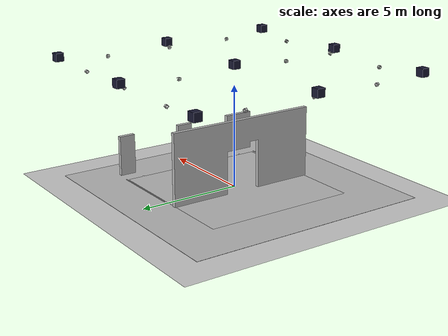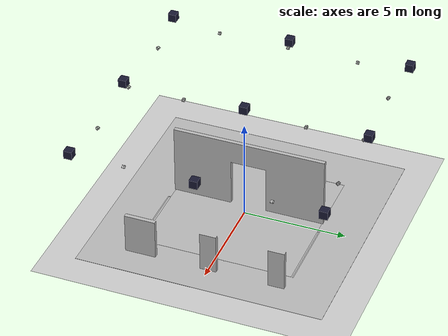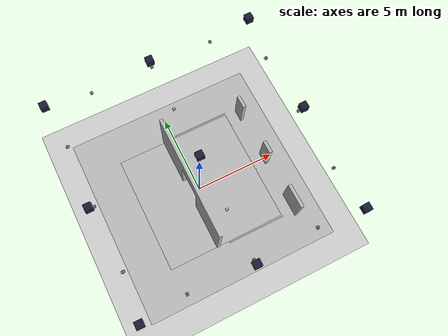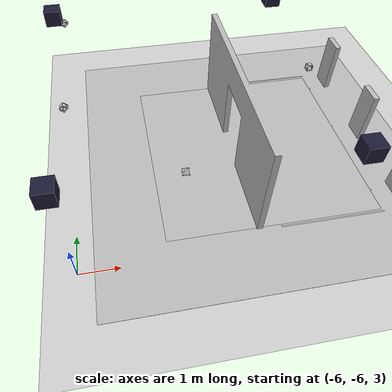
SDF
<sdf version="1.5">
 <world name="map">
  <include><uri>model://sun</uri></include>
  <include><uri>model://ground_plane</uri></include>
  <model name="truss_groundplane">
   <pose>0 0 0.01 0 0 0</pose>
   <include><uri>model://truss_groundplane</uri></include>
  </model>
  <model name="wall_with_markers">
   <pose>-0 0 0 0 0 3.14159</pose>
   <include><uri>model://wall_with_markers_big_board_onepattern_missing_markers_wear</uri></include>
  </model>
  <model name="corner0"><pose>6 6 6 0 0 0</pose><include><uri>model://truss_corner</uri></include></model>
  <model name="top_corner01"><pose>6 0 6 0 0 0</pose><include><uri>model://truss_corner</uri></include></model>
  <model name="corner1"><pose>6 -6 6 0 0 0</pose><include><uri>model://truss_corner</uri></include></model>
  <model name="top_corner12"><pose>0 -6 6 0 0 0</pose><include><uri>model://truss_corner</uri></include></model>
  <model name="corner2"><pose>-6 -6 6 0 0 0</pose><include><uri>model://truss_corner</uri></include></model>
  <model name="top_corner23"><pose>-6 0 6 0 0 0</pose><include><uri>model://truss_corner</uri></include></model>
  <model name="corner3"><pose>-6 6 6 0 0 0</pose><include><uri>model://truss_corner</uri></include></model>
  <model name="top_corner30"><pose>0 6 6 0 0 0</pose><include><uri>model://truss_corner</uri></include></model>
  <model name="center"><pose>0 0 6 0 0 0</pose><include><uri>model://truss_corner</uri></include></model>
  <model name="prime01">
   <pose>5.8 0 5.8 0 0.785 3.14</pose>
   <include><uri>model://optitrack_prime</uri></include>
  </model>
  <model name="prime02">
   <pose>5.8 -3.5 5.8 0 0.785 3.14</pose>
   <include><uri>model://optitrack_prime</uri></include>
  </model>
  <model name="prime03">
   <pose>3.5 -5.8 5.8 0 0.785 1.57</pose>
   <include><uri>model://optitrack_prime</uri></include>
  </model>
  <model name="prime04">
   <pose>0 -5.8 5.8 0 0.785 1.57</pose>
   <include><uri>model://optitrack_prime</uri></include>
  </model>
  <model name="prime05">
   <pose>-3.5 -5.8 5.8 0 0.785 1.57</pose>
   <include><uri>model://optitrack_prime</uri></include>
  </model>
  <model name="prime06">
   <pose>-5.8 -3.5 5.8 0 0.785 0</pose>
   <include><uri>model://optitrack_prime</uri></include>
  </model>
  <model name="prime07">
   <pose>-5.8 0 5.8 0 0.785 0</pose>
   <include><uri>model://optitrack_prime</uri></include>
  </model>
  <model name="prime08">
   <pose>-5.8 3.5 5.8 0 0.785 0</pose>
   <include><uri>model://optitrack_prime</uri></include>
  </model>
  <model name="prime09">
   <pose>-3.5 5.8 5.8 0 0.785 -1.57</pose>
   <include><uri>model://optitrack_prime</uri></include>
  </model>
  <model name="prime10">
   <pose>0 5.8 5.8 0 0.785 -1.57</pose>
   <include><uri>model://optitrack_prime</uri></include>
  </model>
  <model name="prime11">
   <pose>3.5 5.8 5.8 0 0.785 -1.57</pose>
   <include><uri>model://optitrack_prime</uri></include>
  </model>
  <model name="prime12">
   <pose>5.8 3.5 5.8 0 0.785 3.14</pose>
   <include><uri>model://optitrack_prime</uri></include>
  </model>
  <model name="prime13">
   <pose>0 3 5.8 0 1.57 0</pose>
   <include><uri>model://optitrack_prime</uri></include>
  </model>
  <model name="prime14">
   <pose>0 -3 5.8 0 1.57 0</pose>
   <include><uri>model://optitrack_prime</uri></include>
  </model>
  <scene><ambient>0.0 0.0 0.0 1.0</ambient><shadows>0</shadows></scene>
  <light type="directional" name="some_light">
   <diffuse>0.7 0.7 0.7 0</diffuse>
   <specular>1 1 1 0</specular>
   <direction>-1 -1 -1</direction>
   <pose>-18 0 0 0 0 3.16</pose>
  </light>
  <physics name="default_physics" default="0" type="ode">
   <gravity>0 0 -9.8066</gravity>
   <ode>
    <solver>
     <type>quick</type>
     <iters>10</iters>
     <sor>1.3</sor>
     <use_dynamic_moi_rescaling>0</use_dynamic_moi_rescaling>
    </solver>
    <constraints>
     <cfm>0</cfm>
     <erp>0.2</erp>
     <contact_max_correcting_vel>100</contact_max_correcting_vel>
     <contact_surface_layer>0.001</contact_surface_layer>
    </constraints>
   </ode>
   <max_step_size>0.004</max_step_size>
   <real_time_factor>1</real_time_factor>
   <real_time_update_rate>250</real_time_update_rate>
   <magnetic_field>6.0e-6 2.3e-5 -4.2e-5</magnetic_field>
  </physics>
  <plugin name="wind_plugin" filename="libgazebo_wind_plugin.so">
   <frameId>base_link</frameId>
   <namespace>/foo/bar</namespace>
   <xyzOffset>1 0 0</xyzOffset>
   <windDirectionMean>0 1 0</windDirectionMean>
   <windDirectionVariance>0.0</windDirectionVariance>
   <windVelocityMean>0.0</windVelocityMean>
   <windVelocityVariance>0.0</windVelocityVariance>
   <windGustDirection>1 0 0</windGustDirection>
   <windPubTopic>world_wind</windPubTopic>
  </plugin>
 </world>
</sdf>

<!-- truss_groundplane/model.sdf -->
<sdf version="1.6">
  <model name="truss_groundplane">
    <static>true</static>
    <link name="link">
      <pose>0 0 0 0 0 0</pose>

      <collision name="collision">
      <pose>0 0 0 0 0 0</pose>
        <geometry>
          <box>
            <size>12 12 0.01</size>
          </box>
        </geometry>
      </collision>

      <visual name="truss_groundplane">
        <geometry>
          <box>
            <size>12 12 0.01</size>
          </box>
        </geometry>
     </visual>
    </link>
  </model>
</sdf>

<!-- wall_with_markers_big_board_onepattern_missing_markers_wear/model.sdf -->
<sdf version="1.7">
  <model name="Wall_with_markers_big_board_onepattern_missing_markers_wear">
    <static>true</static>
    <pose>0 0 0 0 0 0</pose>
    <link name="link">
    <visual name="visual">
      <geometry>
        <mesh>
          <uri>model://wall_with_markers_big_board_onepattern_missing_markers_wear/meshes/model.dae</uri>
        </mesh>
      </geometry>
    </visual>
  </link>
</model>
</sdf>

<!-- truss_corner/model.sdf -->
<sdf version="1.6">
  <model name="truss_corner">
    <static>true</static>
    <link name="link">
      <pose>0 0 0 0 0 0</pose>

      <collision name="collision">
      <pose>0 0 0 0 0 0</pose>
        <geometry>
          <box>
            <size>0.4 0.4 0.4</size>
          </box>
        </geometry>
      </collision>

      <visual name="truss">
        <geometry>
          <box>
            <size>0.4 0.4 0.4</size>
          </box>
        </geometry>
        <material> <!-- Wheel material -->
          <ambient>0.1 0.1 0.1 1</ambient>
          <diffuse>0.1 0.1 0.2 1</diffuse>
          <specular>0 0 0 0</specular>
          <emissive>0 0 0 1</emissive>
        </material> <!-- End wheel material -->
     </visual>
    </link>
  </model>
</sdf>

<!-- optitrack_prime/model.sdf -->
<sdf version="1.6">
  <model name="optitrack_prime">
    <static>true</static>
    <link name="link">
      <pose>0 0 0 0 0 0</pose>

      <sensor name="logical_camera" type="logical_camera">
          <logical_camera>
            <near>0.55</near>
            <far>2.5</far>
            <horizontal_fov>1.0</horizontal_fov>
            <aspect_ratio>1.8</aspect_ratio>
          </logical_camera>

          <visualize>true</visualize>
          <always_on>true</always_on>
          <update_rate>10</update_rate>
      </sensor>

      <collision name="collision">
      <pose>0 0 0 0 0 0</pose>
        <geometry>
          <box>
            <size>0.2 0.2 0.2</size>
          </box>
        </geometry>
      </collision>

      <visual name="truss">
        <geometry>
          <mesh>
            <uri>model://optitrack_prime/model/model.dae</uri>
            <scale>1.1 1.1 1.1</scale>
	         </mesh>
        </geometry>
     </visual>
    </link>
  </model>
</sdf>
